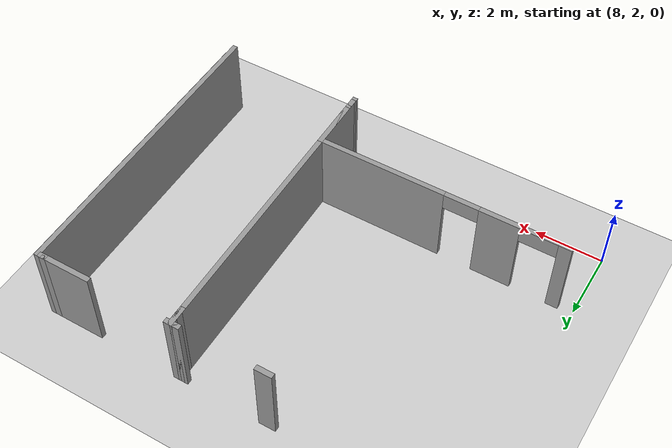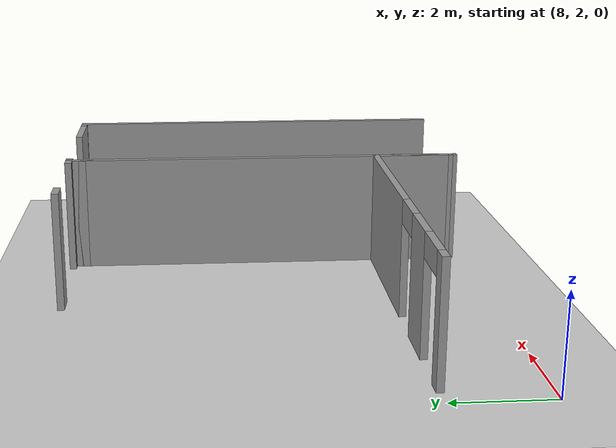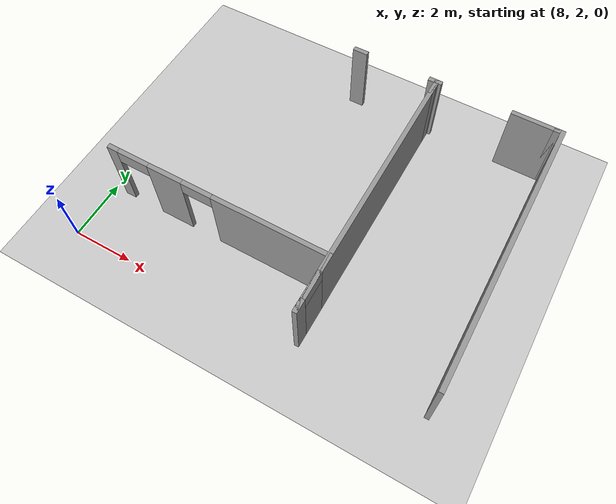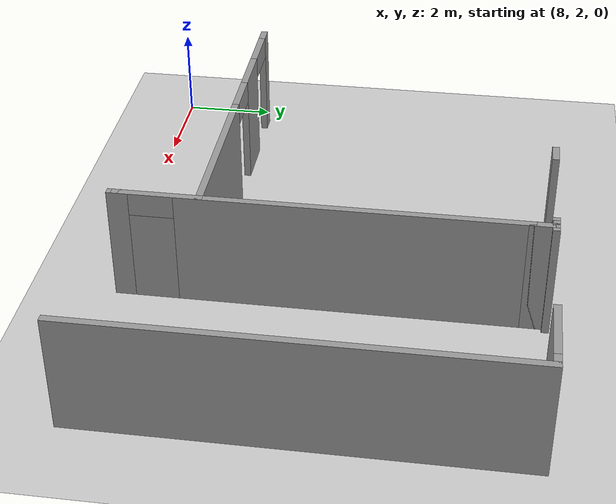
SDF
<sdf version="1.6">
 <world name="default">
  <model name="ground_plane">
   <static>1</static>
   <link name="link">
    <collision name="collision">
     <geometry><plane><normal>0 0 1</normal><size>100 100</size></plane></geometry>
     <surface><friction><ode><mu>100</mu><mu2>50</mu2></ode></friction></surface>
    </collision>
    <visual name="visual">
     <cast_shadows>0</cast_shadows>
     <geometry><plane><normal>0 0 1</normal><size>100 100</size></plane></geometry>
     <material>
      <script><uri>file://media/materials/scripts/gazebo.material</uri><name>Gazebo/Grey</name></script>
     </material>
    </visual>
   </link>
  </model>
  <model name="office_full">
   <pose>-0.417572 -0.704362 0 0 -0 0</pose>
   <link name="Wall_414">
    <collision name="Wall_414_Collision">
     <geometry><box><size>0.5 0.15 2.5</size></box></geometry>
     <pose>0 0 1.25 0 -0 0</pose>
    </collision>
    <visual name="Wall_414_Visual">
     <pose>0 0 1.25 0 -0 0</pose>
     <geometry><box><size>0.5 0.15 2.5</size></box></geometry>
     <material>
      <script><uri>file://media/materials/scripts/gazebo.material</uri><name>Gazebo/Grey</name></script>
      <ambient>1 1 1 1</ambient>
     </material>
    </visual>
    <pose>13.583 11.7397 0 0 -0 0</pose>
   </link>
   <link name="Wall_430">
    <collision name="Wall_430_Collision">
     <geometry><box><size>1.5 0.15 2.5</size></box></geometry>
     <pose>0 0 1.25 0 -0 0</pose>
    </collision>
    <visual name="Wall_430_Visual">
     <pose>0 0 1.25 0 -0 0</pose>
     <geometry><box><size>1.5 0.15 2.5</size></box></geometry>
     <material>
      <script><uri>file://media/materials/scripts/gazebo.material</uri><name>Gazebo/Grey</name></script>
      <ambient>1 1 1 1</ambient>
     </material>
    </visual>
    <pose>19.483 11.7397 0 0 -0 0</pose>
   </link>
   <link name="Wall_431">
    <collision name="Wall_431_Collision">
     <geometry><box><size>0.25 0.15 2.5</size></box></geometry>
     <pose>0 0 1.25 0 -0 0</pose>
    </collision>
    <visual name="Wall_431_Visual">
     <pose>0 0 1.25 0 -0 0</pose>
     <geometry><box><size>0.25 0.15 2.5</size></box></geometry>
     <material>
      <script><uri>file://media/materials/scripts/gazebo.material</uri><name>Gazebo/Grey</name></script>
      <ambient>1 1 1 1</ambient>
     </material>
    </visual>
    <pose>20.208 11.7397 0 0 -0 0</pose>
   </link>
   <link name="Wall_433">
    <collision name="Wall_433_Collision">
     <geometry><box><size>9 0.15 2.5</size></box></geometry>
     <pose>0 0 1.25 0 -0 0</pose>
    </collision>
    <visual name="Wall_433_Visual">
     <pose>0 0 1.25 0 -0 0</pose>
     <geometry><box><size>9 0.15 2.5</size></box></geometry>
     <material>
      <script><uri>file://media/materials/scripts/gazebo.material</uri><name>Gazebo/Grey</name></script>
      <ambient>1 1 1 1</ambient>
     </material>
    </visual>
    <pose>20.358 7.31471 0 0 0 -1.5708</pose>
   </link>
   <link name="Wall_465">
    <pose>12.583 4.73971 0 0 -0 0</pose>
    <visual name="Wall_465_Visual_0">
     <pose>-3.56496 0 1.25 0 -0 0</pose>
     <geometry><box><size>0.370079 0.15 2.5</size></box></geometry>
     <material>
      <script><uri>file://media/materials/scripts/gazebo.material</uri><name>Gazebo/Grey</name></script>
      <ambient>1 1 1 1</ambient>
     </material>
    </visual>
    <collision name="Wall_465_Collision_0">
     <geometry><box><size>0.370079 0.15 2.5</size></box></geometry>
     <pose>-3.56496 0 1.25 0 -0 0</pose>
    </collision>
    <visual name="Wall_465_Visual_1">
     <pose>-1.72009 0 1.25 0 -0 0</pose>
     <geometry><box><size>1.17775 0.15 2.5</size></box></geometry>
     <material>
      <script><uri>file://media/materials/scripts/gazebo.material</uri><name>Gazebo/Grey</name></script>
      <ambient>1 1 1 1</ambient>
     </material>
    </visual>
    <collision name="Wall_465_Collision_1">
     <geometry><box><size>1.17775 0.15 2.5</size></box></geometry>
     <pose>-1.72009 0 1.25 0 -0 0</pose>
    </collision>
    <visual name="Wall_465_Visual_2">
     <pose>1.81857 0 1.25 0 -0 0</pose>
     <geometry><box><size>3.86286 0.15 2.5</size></box></geometry>
     <material>
      <script><uri>file://media/materials/scripts/gazebo.material</uri><name>Gazebo/Grey</name></script>
      <ambient>1 1 1 1</ambient>
     </material>
    </visual>
    <collision name="Wall_465_Collision_2">
     <geometry><box><size>3.86286 0.15 2.5</size></box></geometry>
     <pose>1.81857 0 1.25 0 -0 0</pose>
    </collision>
    <visual name="Wall_465_Visual_3">
     <pose>-2.84444 0 2.25 0 -0 0</pose>
     <geometry><box><size>1.07095 0.15 0.5</size></box></geometry>
     <material>
      <script><uri>file://media/materials/scripts/gazebo.material</uri><name>Gazebo/Grey</name></script>
      <ambient>1 1 1 1</ambient>
     </material>
    </visual>
    <collision name="Wall_465_Collision_3">
     <geometry><box><size>1.07095 0.15 0.5</size></box></geometry>
     <pose>-2.84444 0 2.25 0 -0 0</pose>
    </collision>
    <visual name="Wall_465_Visual_4">
     <pose>-0.62204 0 2.25 0 -0 0</pose>
     <geometry><box><size>1.01835 0.15 0.5</size></box></geometry>
     <material>
      <script><uri>file://media/materials/scripts/gazebo.material</uri><name>Gazebo/Grey</name></script>
      <ambient>1 1 1 1</ambient>
     </material>
    </visual>
    <collision name="Wall_465_Collision_4">
     <geometry><box><size>1.01835 0.15 0.5</size></box></geometry>
     <pose>-0.62204 0 2.25 0 -0 0</pose>
    </collision>
   </link>
   <link name="Wall_466">
    <collision name="Wall_466_Collision">
     <geometry><box><size>1.75 0.15 2.5</size></box></geometry>
     <pose>0 0 1.25 0 -0 0</pose>
    </collision>
    <visual name="Wall_466_Visual">
     <pose>0 0 1.25 0 -0 0</pose>
     <geometry><box><size>1.75 0.15 2.5</size></box></geometry>
     <material>
      <script><uri>file://media/materials/scripts/gazebo.material</uri><name>Gazebo/Grey</name></script>
      <ambient>1 1 1 1</ambient>
     </material>
    </visual>
    <pose>16.258 3.93971 0 0 0 -1.5708</pose>
   </link>
   <link name="Wall_467">
    <collision name="Wall_467_Collision">
     <geometry><box><size>0.25 0.15 2.5</size></box></geometry>
     <pose>0 0 1.25 0 -0 0</pose>
    </collision>
    <visual name="Wall_467_Visual">
     <pose>0 0 1.25 0 -0 0</pose>
     <geometry><box><size>0.25 0.15 2.5</size></box></geometry>
     <material>
      <script><uri>file://media/materials/scripts/gazebo.material</uri><name>Gazebo/Grey</name></script>
      <ambient>1 1 1 1</ambient>
     </material>
    </visual>
    <pose>16.258 3.08971 0 0 0 -1.5708</pose>
   </link>
   <link name="Wall_469">
    <pose>16.258 7.11471 0 0 -0 1.5708</pose>
    <visual name="Wall_469_Visual_0">
     <pose>-4.0295 0 1.25 0 -0 0</pose>
     <geometry><box><size>0.441005 0.15 2.5</size></box></geometry>
     <material>
      <script><uri>file://media/materials/scripts/gazebo.material</uri><name>Gazebo/Grey</name></script>
      <ambient>1 1 1 1</ambient>
     </material>
    </visual>
    <collision name="Wall_469_Collision_0">
     <geometry><box><size>0.441005 0.15 2.5</size></box></geometry>
     <pose>-4.0295 0 1.25 0 -0 0</pose>
    </collision>
    <visual name="Wall_469_Visual_1">
     <pose>0.678107 0 1.25 0 -0 0</pose>
     <geometry><box><size>7.14379 0.15 2.5</size></box></geometry>
     <material>
      <script><uri>file://media/materials/scripts/gazebo.material</uri><name>Gazebo/Grey</name></script>
      <ambient>1 1 1 1</ambient>
     </material>
    </visual>
    <collision name="Wall_469_Collision_1">
     <geometry><box><size>7.14379 0.15 2.5</size></box></geometry>
     <pose>0.678107 0 1.25 0 -0 0</pose>
    </collision>
    <visual name="Wall_469_Visual_2">
     <pose>-3.35139 0 2.25 0 -0 0</pose>
     <geometry><box><size>0.915209 0.15 0.5</size></box></geometry>
     <material>
      <script><uri>file://media/materials/scripts/gazebo.material</uri><name>Gazebo/Grey</name></script>
      <ambient>1 1 1 1</ambient>
     </material>
    </visual>
    <collision name="Wall_469_Collision_2">
     <geometry><box><size>0.915209 0.15 0.5</size></box></geometry>
     <pose>-3.35139 0 2.25 0 -0 0</pose>
    </collision>
   </link>
   <link name="Wall_475">
    <collision name="Wall_475_Collision">
     <geometry><box><size>0.25 0.15 2.5</size></box></geometry>
     <pose>0 0 1.25 0 -0 0</pose>
    </collision>
    <visual name="Wall_475_Visual">
     <pose>0 0 1.25 0 -0 0</pose>
     <geometry><box><size>0.25 0.15 2.5</size></box></geometry>
     <material>
      <script><uri>file://media/materials/scripts/gazebo.material</uri><name>Gazebo/Grey</name></script>
      <ambient>1 1 1 1</ambient>
     </material>
    </visual>
    <pose>16.108 11.7397 0 0 -0 0</pose>
   </link>
   <link name="Wall_476">
    <collision name="Wall_476_Collision">
     <geometry><box><size>0.25 0.15 2.5</size></box></geometry>
     <pose>0 0 1.25 0 -0 0</pose>
    </collision>
    <visual name="Wall_476_Visual">
     <pose>0 0 1.25 0 -0 0</pose>
     <geometry><box><size>0.25 0.15 2.5</size></box></geometry>
     <material>
      <script><uri>file://media/materials/scripts/gazebo.material</uri><name>Gazebo/Grey</name></script>
      <ambient>1 1 1 1</ambient>
     </material>
    </visual>
    <pose>16.208 11.7397 0 0 -0 0</pose>
   </link>
   <link name="Wall_477">
    <collision name="Wall_477_Collision">
     <geometry><box><size>0.6 0.15 2.5</size></box></geometry>
     <pose>0 0 1.25 0 -0 0</pose>
    </collision>
    <visual name="Wall_477_Visual">
     <pose>0 0 1.25 0 -0 0</pose>
     <geometry><box><size>0.6 0.15 2.5</size></box></geometry>
     <material>
      <script><uri>file://media/materials/scripts/gazebo.material</uri><name>Gazebo/Grey</name></script>
      <ambient>1 1 1 1</ambient>
     </material>
    </visual>
    <pose>16.258 11.5147 0 0 0 -1.5708</pose>
   </link>
   <link name="Wall_478">
    <collision name="Wall_478_Collision">
     <geometry><box><size>0.6 0.15 2.5</size></box></geometry>
     <pose>0 0 1.25 0 -0 0</pose>
    </collision>
    <visual name="Wall_478_Visual">
     <pose>0 0 1.25 0 -0 0</pose>
     <geometry><box><size>0.6 0.15 2.5</size></box></geometry>
     <material>
      <script><uri>file://media/materials/scripts/gazebo.material</uri><name>Gazebo/Grey</name></script>
      <ambient>1 1 1 1</ambient>
     </material>
    </visual>
    <pose>16.258 11.5147 0 0 -0 1.5708</pose>
   </link>
   <link name="Wall_479">
    <collision name="Wall_479_Collision">
     <geometry><box><size>0.25 0.15 2.5</size></box></geometry>
     <pose>0 0 1.25 0 -0 0</pose>
    </collision>
    <visual name="Wall_479_Visual">
     <pose>0 0 1.25 0 -0 0</pose>
     <geometry><box><size>0.25 0.15 2.5</size></box></geometry>
     <material>
      <script><uri>file://media/materials/scripts/gazebo.material</uri><name>Gazebo/Grey</name></script>
      <ambient>1 1 1 1</ambient>
     </material>
    </visual>
    <pose>16.308 11.7397 0 0 -0 0</pose>
   </link>
   <static>1</static>
  </model>
 </world>
</sdf>
